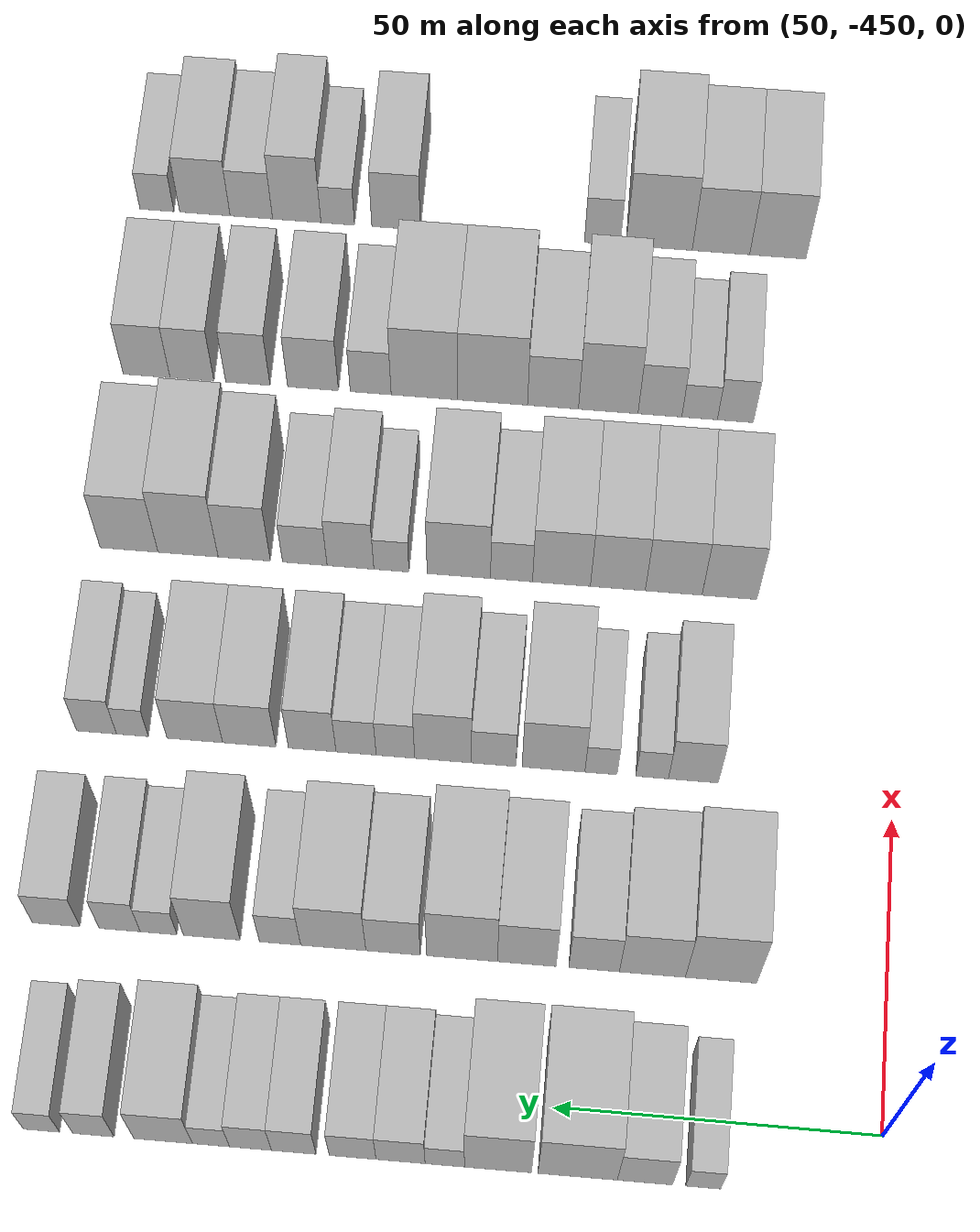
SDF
<sdf version="1.6">
 <world name="default">
  <model name="building_14">
   <static>1</static>
   <pose>50.0000 -423.2773 0 0.000000 0.000000 0.000000</pose>
   <link name="link">
    <pose>0 0 6.00 0 0 0</pose>
    <collision name="collision"><geometry><box><size>20.0000 5.2544 12.0000</size></box></geometry></collision>
    <visual name="visual">
     <cast_shadows>0</cast_shadows>
     <geometry><box><size>20.0000 5.2544 12.0000</size></box></geometry>
     <material>
      <script>
       <uri>model://HANNAS_wall/materials/scripts</uri>
       <uri>model://HANNAS_wall/materials/textures</uri>
       <name>vrc/HANNAS_wall</name>
      </script>
     </material>
    </visual>
   </link>
  </model>
  <model name="building_15">
   <static>1</static>
   <pose>50.0000 -414.4967 0 0.000000 0.000000 0.000000</pose>
   <link name="link">
    <pose>0 0 9.00 0 0 0</pose>
    <collision name="collision"><geometry><box><size>20.0000 8.3069 18.0000</size></box></geometry></collision>
    <visual name="visual">
     <cast_shadows>0</cast_shadows>
     <geometry><box><size>20.0000 8.3069 18.0000</size></box></geometry>
     <material>
      <script>
       <uri>model://HANNAS_wall/materials/scripts</uri>
       <uri>model://HANNAS_wall/materials/textures</uri>
       <name>vrc/HANNAS_wall</name>
      </script>
     </material>
    </visual>
   </link>
  </model>
  <model name="building_16">
   <static>1</static>
   <pose>50.0000 -404.3674 0 0.000000 0.000000 0.000000</pose>
   <link name="link">
    <pose>0 0 12.00 0 0 0</pose>
    <collision name="collision"><geometry><box><size>20.0000 11.9518 24.0000</size></box></geometry></collision>
    <visual name="visual">
     <cast_shadows>0</cast_shadows>
     <geometry><box><size>20.0000 11.9518 24.0000</size></box></geometry>
     <material>
      <script>
       <uri>model://HANNAS_wall/materials/scripts</uri>
       <uri>model://HANNAS_wall/materials/textures</uri>
       <name>vrc/HANNAS_wall</name>
      </script>
     </material>
    </visual>
   </link>
  </model>
  <model name="building_17">
   <static>1</static>
   <pose>50.0000 -392.3317 0 0.000000 0.000000 0.000000</pose>
   <link name="link">
    <pose>0 0 12.00 0 0 0</pose>
    <collision name="collision"><geometry><box><size>20.0000 10.1196 24.0000</size></box></geometry></collision>
    <visual name="visual">
     <cast_shadows>0</cast_shadows>
     <geometry><box><size>20.0000 10.1196 24.0000</size></box></geometry>
     <material>
      <script>
       <uri>model://HANNAS_wall/materials/scripts</uri>
       <uri>model://HANNAS_wall/materials/textures</uri>
       <name>vrc/HANNAS_wall</name>
      </script>
     </material>
    </visual>
   </link>
  </model>
  <model name="building_18">
   <static>1</static>
   <pose>50.0000 -384.3064 0 0.000000 0.000000 0.000000</pose>
   <link name="link">
    <pose>0 0 6.00 0 0 0</pose>
    <collision name="collision"><geometry><box><size>20.0000 5.9310 12.0000</size></box></geometry></collision>
    <visual name="visual">
     <cast_shadows>0</cast_shadows>
     <geometry><box><size>20.0000 5.9310 12.0000</size></box></geometry>
     <material>
      <script>
       <uri>model://HANNAS_wall/materials/scripts</uri>
       <uri>model://HANNAS_wall/materials/textures</uri>
       <name>vrc/HANNAS_wall</name>
      </script>
     </material>
    </visual>
   </link>
  </model>
  <model name="building_19">
   <static>1</static>
   <pose>50.0000 -377.6340 0 0.000000 0.000000 0.000000</pose>
   <link name="link">
    <pose>0 0 7.50 0 0 0</pose>
    <collision name="collision"><geometry><box><size>20.0000 7.4138 15.0000</size></box></geometry></collision>
    <visual name="visual">
     <cast_shadows>0</cast_shadows>
     <geometry><box><size>20.0000 7.4138 15.0000</size></box></geometry>
     <material>
      <script>
       <uri>model://HANNAS_wall/materials/scripts</uri>
       <uri>model://HANNAS_wall/materials/textures</uri>
       <name>vrc/HANNAS_wall</name>
      </script>
     </material>
    </visual>
   </link>
  </model>
  <model name="building_20">
   <static>1</static>
   <pose>50.0000 -370.3823 0 0.000000 0.000000 0.000000</pose>
   <link name="link">
    <pose>0 0 7.50 0 0 0</pose>
    <collision name="collision"><geometry><box><size>20.0000 7.0895 15.0000</size></box></geometry></collision>
    <visual name="visual">
     <cast_shadows>0</cast_shadows>
     <geometry><box><size>20.0000 7.0895 15.0000</size></box></geometry>
     <material>
      <script>
       <uri>model://HANNAS_wall/materials/scripts</uri>
       <uri>model://HANNAS_wall/materials/textures</uri>
       <name>vrc/HANNAS_wall</name>
      </script>
     </material>
    </visual>
   </link>
  </model>
  <model name="building_21">
   <static>1</static>
   <pose>50.0000 -361.4467 0 0.000000 0.000000 0.000000</pose>
   <link name="link">
    <pose>0 0 7.50 0 0 0</pose>
    <collision name="collision"><geometry><box><size>20.0000 6.7816 15.0000</size></box></geometry></collision>
    <visual name="visual">
     <cast_shadows>0</cast_shadows>
     <geometry><box><size>20.0000 6.7816 15.0000</size></box></geometry>
     <material>
      <script>
       <uri>model://HANNAS_wall/materials/scripts</uri>
       <uri>model://HANNAS_wall/materials/textures</uri>
       <name>vrc/HANNAS_wall</name>
      </script>
     </material>
    </visual>
   </link>
  </model>
  <model name="building_22">
   <static>1</static>
   <pose>50.0000 -354.8756 0 0.000000 0.000000 0.000000</pose>
   <link name="link">
    <pose>0 0 7.50 0 0 0</pose>
    <collision name="collision"><geometry><box><size>20.0000 6.3606 15.0000</size></box></geometry></collision>
    <visual name="visual">
     <cast_shadows>0</cast_shadows>
     <geometry><box><size>20.0000 6.3606 15.0000</size></box></geometry>
     <material>
      <script>
       <uri>model://HANNAS_wall/materials/scripts</uri>
       <uri>model://HANNAS_wall/materials/textures</uri>
       <name>vrc/HANNAS_wall</name>
      </script>
     </material>
    </visual>
   </link>
  </model>
  <model name="building_23">
   <static>1</static>
   <pose>50.0000 -348.8726 0 0.000000 0.000000 0.000000</pose>
   <link name="link">
    <pose>0 0 6.00 0 0 0</pose>
    <collision name="collision"><geometry><box><size>20.0000 5.6454 12.0000</size></box></geometry></collision>
    <visual name="visual">
     <cast_shadows>0</cast_shadows>
     <geometry><box><size>20.0000 5.6454 12.0000</size></box></geometry>
     <material>
      <script>
       <uri>model://HANNAS_wall/materials/scripts</uri>
       <uri>model://HANNAS_wall/materials/textures</uri>
       <name>vrc/HANNAS_wall</name>
      </script>
     </material>
    </visual>
   </link>
  </model>
  <model name="building_24">
   <static>1</static>
   <pose>50.0000 -341.5945 0 0.000000 0.000000 0.000000</pose>
   <link name="link">
    <pose>0 0 9.00 0 0 0</pose>
    <collision name="collision"><geometry><box><size>20.0000 8.9108 18.0000</size></box></geometry></collision>
    <visual name="visual">
     <cast_shadows>0</cast_shadows>
     <geometry><box><size>20.0000 8.9108 18.0000</size></box></geometry>
     <material>
      <script>
       <uri>model://HANNAS_wall/materials/scripts</uri>
       <uri>model://HANNAS_wall/materials/textures</uri>
       <name>vrc/HANNAS_wall</name>
      </script>
     </material>
    </visual>
   </link>
  </model>
  <model name="building_25">
   <static>1</static>
   <pose>50.0000 -330.9792 0 0.000000 0.000000 0.000000</pose>
   <link name="link">
    <pose>0 0 7.50 0 0 0</pose>
    <collision name="collision"><geometry><box><size>20.0000 6.3199 15.0000</size></box></geometry></collision>
    <visual name="visual">
     <cast_shadows>0</cast_shadows>
     <geometry><box><size>20.0000 6.3199 15.0000</size></box></geometry>
     <material>
      <script>
       <uri>model://HANNAS_wall/materials/scripts</uri>
       <uri>model://HANNAS_wall/materials/textures</uri>
       <name>vrc/HANNAS_wall</name>
      </script>
     </material>
    </visual>
   </link>
  </model>
  <model name="building_26">
   <static>1</static>
   <pose>50.0000 -323.0660 0 0.000000 0.000000 0.000000</pose>
   <link name="link">
    <pose>0 0 6.00 0 0 0</pose>
    <collision name="collision"><geometry><box><size>20.0000 5.5065 12.0000</size></box></geometry></collision>
    <visual name="visual">
     <cast_shadows>0</cast_shadows>
     <geometry><box><size>20.0000 5.5065 12.0000</size></box></geometry>
     <material>
      <script>
       <uri>model://HANNAS_wall/materials/scripts</uri>
       <uri>model://HANNAS_wall/materials/textures</uri>
       <name>vrc/HANNAS_wall</name>
      </script>
     </material>
    </visual>
   </link>
  </model>
  <model name="building_141">
   <static>1</static>
   <pose>82.0000 -424.3336 0 0.000000 0.000000 0.000000</pose>
   <link name="link">
    <pose>0 0 12.00 0 0 0</pose>
    <collision name="collision"><geometry><box><size>20.0000 11.0124 24.0000</size></box></geometry></collision>
    <visual name="visual">
     <cast_shadows>0</cast_shadows>
     <geometry><box><size>20.0000 11.0124 24.0000</size></box></geometry>
     <material>
      <script>
       <uri>model://HANNAS_wall/materials/scripts</uri>
       <uri>model://HANNAS_wall/materials/textures</uri>
       <name>vrc/HANNAS_wall</name>
      </script>
     </material>
    </visual>
   </link>
  </model>
  <model name="building_142">
   <static>1</static>
   <pose>82.0000 -413.7071 0 0.000000 0.000000 0.000000</pose>
   <link name="link">
    <pose>0 0 10.50 0 0 0</pose>
    <collision name="collision"><geometry><box><size>20.0000 10.2407 21.0000</size></box></geometry></collision>
    <visual name="visual">
     <cast_shadows>0</cast_shadows>
     <geometry><box><size>20.0000 10.2407 21.0000</size></box></geometry>
     <material>
      <script>
       <uri>model://HANNAS_wall/materials/scripts</uri>
       <uri>model://HANNAS_wall/materials/textures</uri>
       <name>vrc/HANNAS_wall</name>
      </script>
     </material>
    </visual>
   </link>
  </model>
  <model name="building_143">
   <static>1</static>
   <pose>82.0000 -404.6716 0 0.000000 0.000000 0.000000</pose>
   <link name="link">
    <pose>0 0 9.00 0 0 0</pose>
    <collision name="collision"><geometry><box><size>20.0000 7.8303 18.0000</size></box></geometry></collision>
    <visual name="visual">
     <cast_shadows>0</cast_shadows>
     <geometry><box><size>20.0000 7.8303 18.0000</size></box></geometry>
     <material>
      <script>
       <uri>model://HANNAS_wall/materials/scripts</uri>
       <uri>model://HANNAS_wall/materials/textures</uri>
       <name>vrc/HANNAS_wall</name>
      </script>
     </material>
    </visual>
   </link>
  </model>
  <model name="building_144">
   <static>1</static>
   <pose>82.0000 -394.2082 0 0.000000 0.000000 0.000000</pose>
   <link name="link">
    <pose>0 0 10.50 0 0 0</pose>
    <collision name="collision"><geometry><box><size>20.0000 9.0965 21.0000</size></box></geometry></collision>
    <visual name="visual">
     <cast_shadows>0</cast_shadows>
     <geometry><box><size>20.0000 9.0965 21.0000</size></box></geometry>
     <material>
      <script>
       <uri>model://HANNAS_wall/materials/scripts</uri>
       <uri>model://HANNAS_wall/materials/textures</uri>
       <name>vrc/HANNAS_wall</name>
      </script>
     </material>
    </visual>
   </link>
  </model>
  <model name="building_145">
   <static>1</static>
   <pose>82.0000 -384.1647 0 0.000000 0.000000 0.000000</pose>
   <link name="link">
    <pose>0 0 12.00 0 0 0</pose>
    <collision name="collision"><geometry><box><size>20.0000 10.9904 24.0000</size></box></geometry></collision>
    <visual name="visual">
     <cast_shadows>0</cast_shadows>
     <geometry><box><size>20.0000 10.9904 24.0000</size></box></geometry>
     <material>
      <script>
       <uri>model://HANNAS_wall/materials/scripts</uri>
       <uri>model://HANNAS_wall/materials/textures</uri>
       <name>vrc/HANNAS_wall</name>
      </script>
     </material>
    </visual>
   </link>
  </model>
  <model name="building_146">
   <static>1</static>
   <pose>82.0000 -373.4255 0 0.000000 0.000000 0.000000</pose>
   <link name="link">
    <pose>0 0 9.00 0 0 0</pose>
    <collision name="collision"><geometry><box><size>20.0000 8.4880 18.0000</size></box></geometry></collision>
    <visual name="visual">
     <cast_shadows>0</cast_shadows>
     <geometry><box><size>20.0000 8.4880 18.0000</size></box></geometry>
     <material>
      <script>
       <uri>model://HANNAS_wall/materials/scripts</uri>
       <uri>model://HANNAS_wall/materials/textures</uri>
       <name>vrc/HANNAS_wall</name>
      </script>
     </material>
    </visual>
   </link>
  </model>
  <model name="building_147">
   <static>1</static>
   <pose>82.0000 -364.0912 0 0.000000 0.000000 0.000000</pose>
   <link name="link">
    <pose>0 0 10.50 0 0 0</pose>
    <collision name="collision"><geometry><box><size>20.0000 10.1805 21.0000</size></box></geometry></collision>
    <visual name="visual">
     <cast_shadows>0</cast_shadows>
     <geometry><box><size>20.0000 10.1805 21.0000</size></box></geometry>
     <material>
      <script>
       <uri>model://HANNAS_wall/materials/scripts</uri>
       <uri>model://HANNAS_wall/materials/textures</uri>
       <name>vrc/HANNAS_wall</name>
      </script>
     </material>
    </visual>
   </link>
  </model>
  <model name="building_148">
   <static>1</static>
   <pose>82.0000 -355.7858 0 0.000000 0.000000 0.000000</pose>
   <link name="link">
    <pose>0 0 7.50 0 0 0</pose>
    <collision name="collision"><geometry><box><size>20.0000 6.4305 15.0000</size></box></geometry></collision>
    <visual name="visual">
     <cast_shadows>0</cast_shadows>
     <geometry><box><size>20.0000 6.4305 15.0000</size></box></geometry>
     <material>
      <script>
       <uri>model://HANNAS_wall/materials/scripts</uri>
       <uri>model://HANNAS_wall/materials/textures</uri>
       <name>vrc/HANNAS_wall</name>
      </script>
     </material>
    </visual>
   </link>
  </model>
  <model name="building_149">
   <static>1</static>
   <pose>82.0000 -345.1170 0 0.000000 0.000000 0.000000</pose>
   <link name="link">
    <pose>0 0 10.50 0 0 0</pose>
    <collision name="collision"><geometry><box><size>20.0000 8.9071 21.0000</size></box></geometry></collision>
    <visual name="visual">
     <cast_shadows>0</cast_shadows>
     <geometry><box><size>20.0000 8.9071 21.0000</size></box></geometry>
     <material>
      <script>
       <uri>model://HANNAS_wall/materials/scripts</uri>
       <uri>model://HANNAS_wall/materials/textures</uri>
       <name>vrc/HANNAS_wall</name>
      </script>
     </material>
    </visual>
   </link>
  </model>
  <model name="building_150">
   <static>1</static>
   <pose>82.0000 -336.7824 0 0.000000 0.000000 0.000000</pose>
   <link name="link">
    <pose>0 0 6.00 0 0 0</pose>
    <collision name="collision"><geometry><box><size>20.0000 5.7620 12.0000</size></box></geometry></collision>
    <visual name="visual">
     <cast_shadows>0</cast_shadows>
     <geometry><box><size>20.0000 5.7620 12.0000</size></box></geometry>
     <material>
      <script>
       <uri>model://HANNAS_wall/materials/scripts</uri>
       <uri>model://HANNAS_wall/materials/textures</uri>
       <name>vrc/HANNAS_wall</name>
      </script>
     </material>
    </visual>
   </link>
  </model>
  <model name="building_151">
   <static>1</static>
   <pose>82.0000 -330.6699 0 0.000000 0.000000 0.000000</pose>
   <link name="link">
    <pose>0 0 7.50 0 0 0</pose>
    <collision name="collision"><geometry><box><size>20.0000 6.4630 15.0000</size></box></geometry></collision>
    <visual name="visual">
     <cast_shadows>0</cast_shadows>
     <geometry><box><size>20.0000 6.4630 15.0000</size></box></geometry>
     <material>
      <script>
       <uri>model://HANNAS_wall/materials/scripts</uri>
       <uri>model://HANNAS_wall/materials/textures</uri>
       <name>vrc/HANNAS_wall</name>
      </script>
     </material>
    </visual>
   </link>
  </model>
  <model name="building_152">
   <static>1</static>
   <pose>82.0000 -320.7063 0 0.000000 0.000000 0.000000</pose>
   <link name="link">
    <pose>0 0 7.50 0 0 0</pose>
    <collision name="collision"><geometry><box><size>20.0000 7.4641 15.0000</size></box></geometry></collision>
    <visual name="visual">
     <cast_shadows>0</cast_shadows>
     <geometry><box><size>20.0000 7.4641 15.0000</size></box></geometry>
     <material>
      <script>
       <uri>model://HANNAS_wall/materials/scripts</uri>
       <uri>model://HANNAS_wall/materials/textures</uri>
       <name>vrc/HANNAS_wall</name>
      </script>
     </material>
    </visual>
   </link>
  </model>
  <model name="building_260">
   <static>1</static>
   <pose>114.0000 -418.3069 0 0.000000 0.000000 0.000000</pose>
   <link name="link">
    <pose>0 0 9.00 0 0 0</pose>
    <collision name="collision"><geometry><box><size>20.0000 7.9290 18.0000</size></box></geometry></collision>
    <visual name="visual">
     <cast_shadows>0</cast_shadows>
     <geometry><box><size>20.0000 7.9290 18.0000</size></box></geometry>
     <material>
      <script>
       <uri>model://HANNAS_wall/materials/scripts</uri>
       <uri>model://HANNAS_wall/materials/textures</uri>
       <name>vrc/HANNAS_wall</name>
      </script>
     </material>
    </visual>
   </link>
  </model>
  <model name="building_261">
   <static>1</static>
   <pose>114.0000 -411.7435 0 0.000000 0.000000 0.000000</pose>
   <link name="link">
    <pose>0 0 6.00 0 0 0</pose>
    <collision name="collision"><geometry><box><size>20.0000 5.1978 12.0000</size></box></geometry></collision>
    <visual name="visual">
     <cast_shadows>0</cast_shadows>
     <geometry><box><size>20.0000 5.1978 12.0000</size></box></geometry>
     <material>
      <script>
       <uri>model://HANNAS_wall/materials/scripts</uri>
       <uri>model://HANNAS_wall/materials/textures</uri>
       <name>vrc/HANNAS_wall</name>
      </script>
     </material>
    </visual>
   </link>
  </model>
  <model name="building_262">
   <static>1</static>
   <pose>114.0000 -403.5825 0 0.000000 0.000000 0.000000</pose>
   <link name="link">
    <pose>0 0 6.00 0 0 0</pose>
    <collision name="collision"><geometry><box><size>20.0000 5.1242 12.0000</size></box></geometry></collision>
    <visual name="visual">
     <cast_shadows>0</cast_shadows>
     <geometry><box><size>20.0000 5.1242 12.0000</size></box></geometry>
     <material>
      <script>
       <uri>model://HANNAS_wall/materials/scripts</uri>
       <uri>model://HANNAS_wall/materials/textures</uri>
       <name>vrc/HANNAS_wall</name>
      </script>
     </material>
    </visual>
   </link>
  </model>
  <model name="building_263">
   <static>1</static>
   <pose>114.0000 -396.0095 0 0.000000 0.000000 0.000000</pose>
   <link name="link">
    <pose>0 0 10.50 0 0 0</pose>
    <collision name="collision"><geometry><box><size>20.0000 10.0218 21.0000</size></box></geometry></collision>
    <visual name="visual">
     <cast_shadows>0</cast_shadows>
     <geometry><box><size>20.0000 10.0218 21.0000</size></box></geometry>
     <material>
      <script>
       <uri>model://HANNAS_wall/materials/scripts</uri>
       <uri>model://HANNAS_wall/materials/textures</uri>
       <name>vrc/HANNAS_wall</name>
      </script>
     </material>
    </visual>
   </link>
  </model>
  <model name="building_264">
   <static>1</static>
   <pose>114.0000 -386.4516 0 0.000000 0.000000 0.000000</pose>
   <link name="link">
    <pose>0 0 7.50 0 0 0</pose>
    <collision name="collision"><geometry><box><size>20.0000 7.0940 15.0000</size></box></geometry></collision>
    <visual name="visual">
     <cast_shadows>0</cast_shadows>
     <geometry><box><size>20.0000 7.0940 15.0000</size></box></geometry>
     <material>
      <script>
       <uri>model://HANNAS_wall/materials/scripts</uri>
       <uri>model://HANNAS_wall/materials/textures</uri>
       <name>vrc/HANNAS_wall</name>
      </script>
     </material>
    </visual>
   </link>
  </model>
  <model name="building_265">
   <static>1</static>
   <pose>114.0000 -378.3552 0 0.000000 0.000000 0.000000</pose>
   <link name="link">
    <pose>0 0 10.50 0 0 0</pose>
    <collision name="collision"><geometry><box><size>20.0000 9.0988 21.0000</size></box></geometry></collision>
    <visual name="visual">
     <cast_shadows>0</cast_shadows>
     <geometry><box><size>20.0000 9.0988 21.0000</size></box></geometry>
     <material>
      <script>
       <uri>model://HANNAS_wall/materials/scripts</uri>
       <uri>model://HANNAS_wall/materials/textures</uri>
       <name>vrc/HANNAS_wall</name>
      </script>
     </material>
    </visual>
   </link>
  </model>
  <model name="building_266">
   <static>1</static>
   <pose>114.0000 -370.7224 0 0.000000 0.000000 0.000000</pose>
   <link name="link">
    <pose>0 0 7.50 0 0 0</pose>
    <collision name="collision"><geometry><box><size>20.0000 6.1670 15.0000</size></box></geometry></collision>
    <visual name="visual">
     <cast_shadows>0</cast_shadows>
     <geometry><box><size>20.0000 6.1670 15.0000</size></box></geometry>
     <material>
      <script>
       <uri>model://HANNAS_wall/materials/scripts</uri>
       <uri>model://HANNAS_wall/materials/textures</uri>
       <name>vrc/HANNAS_wall</name>
      </script>
     </material>
    </visual>
   </link>
  </model>
  <model name="building_267">
   <static>1</static>
   <pose>114.0000 -364.4192 0 0.000000 0.000000 0.000000</pose>
   <link name="link">
    <pose>0 0 7.50 0 0 0</pose>
    <collision name="collision"><geometry><box><size>20.0000 6.4394 15.0000</size></box></geometry></collision>
    <visual name="visual">
     <cast_shadows>0</cast_shadows>
     <geometry><box><size>20.0000 6.4394 15.0000</size></box></geometry>
     <material>
      <script>
       <uri>model://HANNAS_wall/materials/scripts</uri>
       <uri>model://HANNAS_wall/materials/textures</uri>
       <name>vrc/HANNAS_wall</name>
      </script>
     </material>
    </visual>
   </link>
  </model>
  <model name="building_268">
   <static>1</static>
   <pose>114.0000 -357.3768 0 0.000000 0.000000 0.000000</pose>
   <link name="link">
    <pose>0 0 9.00 0 0 0</pose>
    <collision name="collision"><geometry><box><size>20.0000 7.6453 18.0000</size></box></geometry></collision>
    <visual name="visual">
     <cast_shadows>0</cast_shadows>
     <geometry><box><size>20.0000 7.6453 18.0000</size></box></geometry>
     <material>
      <script>
       <uri>model://HANNAS_wall/materials/scripts</uri>
       <uri>model://HANNAS_wall/materials/textures</uri>
       <name>vrc/HANNAS_wall</name>
      </script>
     </material>
    </visual>
   </link>
  </model>
  <model name="building_269">
   <static>1</static>
   <pose>114.0000 -347.2664 0 0.000000 0.000000 0.000000</pose>
   <link name="link">
    <pose>0 0 9.00 0 0 0</pose>
    <collision name="collision"><geometry><box><size>20.0000 8.5756 18.0000</size></box></geometry></collision>
    <visual name="visual">
     <cast_shadows>0</cast_shadows>
     <geometry><box><size>20.0000 8.5756 18.0000</size></box></geometry>
     <material>
      <script>
       <uri>model://HANNAS_wall/materials/scripts</uri>
       <uri>model://HANNAS_wall/materials/textures</uri>
       <name>vrc/HANNAS_wall</name>
      </script>
     </material>
    </visual>
   </link>
  </model>
  <model name="building_270">
   <static>1</static>
   <pose>114.0000 -338.4907 0 0.000000 0.000000 0.000000</pose>
   <link name="link">
    <pose>0 0 9.00 0 0 0</pose>
    <collision name="collision"><geometry><box><size>20.0000 8.9759 18.0000</size></box></geometry></collision>
    <visual name="visual">
     <cast_shadows>0</cast_shadows>
     <geometry><box><size>20.0000 8.9759 18.0000</size></box></geometry>
     <material>
      <script>
       <uri>model://HANNAS_wall/materials/scripts</uri>
       <uri>model://HANNAS_wall/materials/textures</uri>
       <name>vrc/HANNAS_wall</name>
      </script>
     </material>
    </visual>
   </link>
  </model>
  <model name="building_271">
   <static>1</static>
   <pose>114.0000 -328.4315 0 0.000000 0.000000 0.000000</pose>
   <link name="link">
    <pose>0 0 6.00 0 0 0</pose>
    <collision name="collision"><geometry><box><size>20.0000 5.1425 12.0000</size></box></geometry></collision>
    <visual name="visual">
     <cast_shadows>0</cast_shadows>
     <geometry><box><size>20.0000 5.1425 12.0000</size></box></geometry>
     <material>
      <script>
       <uri>model://HANNAS_wall/materials/scripts</uri>
       <uri>model://HANNAS_wall/materials/textures</uri>
       <name>vrc/HANNAS_wall</name>
      </script>
     </material>
    </visual>
   </link>
  </model>
  <model name="building_272">
   <static>1</static>
   <pose>114.0000 -322.6305 0 0.000000 0.000000 0.000000</pose>
   <link name="link">
    <pose>0 0 7.50 0 0 0</pose>
    <collision name="collision"><geometry><box><size>20.0000 6.4595 15.0000</size></box></geometry></collision>
    <visual name="visual">
     <cast_shadows>0</cast_shadows>
     <geometry><box><size>20.0000 6.4595 15.0000</size></box></geometry>
     <material>
      <script>
       <uri>model://HANNAS_wall/materials/scripts</uri>
       <uri>model://HANNAS_wall/materials/textures</uri>
       <name>vrc/HANNAS_wall</name>
      </script>
     </material>
    </visual>
   </link>
  </model>
  <model name="building_384">
   <static>1</static>
   <pose>146.0000 -422.4811 0 0.000000 0.000000 0.000000</pose>
   <link name="link">
    <pose>0 0 10.50 0 0 0</pose>
    <collision name="collision"><geometry><box><size>20.0000 8.9556 21.0000</size></box></geometry></collision>
    <visual name="visual">
     <cast_shadows>0</cast_shadows>
     <geometry><box><size>20.0000 8.9556 21.0000</size></box></geometry>
     <material>
      <script>
       <uri>model://HANNAS_wall/materials/scripts</uri>
       <uri>model://HANNAS_wall/materials/textures</uri>
       <name>vrc/HANNAS_wall</name>
      </script>
     </material>
    </visual>
   </link>
  </model>
  <model name="building_385">
   <static>1</static>
   <pose>146.0000 -413.3529 0 0.000000 0.000000 0.000000</pose>
   <link name="link">
    <pose>0 0 10.50 0 0 0</pose>
    <collision name="collision"><geometry><box><size>20.0000 9.3007 21.0000</size></box></geometry></collision>
    <visual name="visual">
     <cast_shadows>0</cast_shadows>
     <geometry><box><size>20.0000 9.3007 21.0000</size></box></geometry>
     <material>
      <script>
       <uri>model://HANNAS_wall/materials/scripts</uri>
       <uri>model://HANNAS_wall/materials/textures</uri>
       <name>vrc/HANNAS_wall</name>
      </script>
     </material>
    </visual>
   </link>
  </model>
  <model name="building_386">
   <static>1</static>
   <pose>146.0000 -404.1996 0 0.000000 0.000000 0.000000</pose>
   <link name="link">
    <pose>0 0 10.50 0 0 0</pose>
    <collision name="collision"><geometry><box><size>20.0000 9.0059 21.0000</size></box></geometry></collision>
    <visual name="visual">
     <cast_shadows>0</cast_shadows>
     <geometry><box><size>20.0000 9.0059 21.0000</size></box></geometry>
     <material>
      <script>
       <uri>model://HANNAS_wall/materials/scripts</uri>
       <uri>model://HANNAS_wall/materials/textures</uri>
       <name>vrc/HANNAS_wall</name>
      </script>
     </material>
    </visual>
   </link>
  </model>
  <model name="building_387">
   <static>1</static>
   <pose>146.0000 -394.9527 0 0.000000 0.000000 0.000000</pose>
   <link name="link">
    <pose>0 0 10.50 0 0 0</pose>
    <collision name="collision"><geometry><box><size>20.0000 9.4879 21.0000</size></box></geometry></collision>
    <visual name="visual">
     <cast_shadows>0</cast_shadows>
     <geometry><box><size>20.0000 9.4879 21.0000</size></box></geometry>
     <material>
      <script>
       <uri>model://HANNAS_wall/materials/scripts</uri>
       <uri>model://HANNAS_wall/materials/textures</uri>
       <name>vrc/HANNAS_wall</name>
      </script>
     </material>
    </visual>
   </link>
  </model>
  <model name="building_388">
   <static>1</static>
   <pose>146.0000 -386.7587 0 0.000000 0.000000 0.000000</pose>
   <link name="link">
    <pose>0 0 7.50 0 0 0</pose>
    <collision name="collision"><geometry><box><size>20.0000 6.9002 15.0000</size></box></geometry></collision>
    <visual name="visual">
     <cast_shadows>0</cast_shadows>
     <geometry><box><size>20.0000 6.9002 15.0000</size></box></geometry>
     <material>
      <script>
       <uri>model://HANNAS_wall/materials/scripts</uri>
       <uri>model://HANNAS_wall/materials/textures</uri>
       <name>vrc/HANNAS_wall</name>
      </script>
     </material>
    </visual>
   </link>
  </model>
  <model name="building_389">
   <static>1</static>
   <pose>146.0000 -378.0991 0 0.000000 0.000000 0.000000</pose>
   <link name="link">
    <pose>0 0 10.50 0 0 0</pose>
    <collision name="collision"><geometry><box><size>20.0000 10.4190 21.0000</size></box></geometry></collision>
    <visual name="visual">
     <cast_shadows>0</cast_shadows>
     <geometry><box><size>20.0000 10.4190 21.0000</size></box></geometry>
     <material>
      <script>
       <uri>model://HANNAS_wall/materials/scripts</uri>
       <uri>model://HANNAS_wall/materials/textures</uri>
       <name>vrc/HANNAS_wall</name>
      </script>
     </material>
    </visual>
   </link>
  </model>
  <model name="building_390">
   <static>1</static>
   <pose>146.0000 -366.9949 0 0.000000 0.000000 0.000000</pose>
   <link name="link">
    <pose>0 0 6.00 0 0 0</pose>
    <collision name="collision"><geometry><box><size>20.0000 5.7893 12.0000</size></box></geometry></collision>
    <visual name="visual">
     <cast_shadows>0</cast_shadows>
     <geometry><box><size>20.0000 5.7893 12.0000</size></box></geometry>
     <material>
      <script>
       <uri>model://HANNAS_wall/materials/scripts</uri>
       <uri>model://HANNAS_wall/materials/textures</uri>
       <name>vrc/HANNAS_wall</name>
      </script>
     </material>
    </visual>
   </link>
  </model>
  <model name="building_391">
   <static>1</static>
   <pose>146.0000 -360.2416 0 0.000000 0.000000 0.000000</pose>
   <link name="link">
    <pose>0 0 9.00 0 0 0</pose>
    <collision name="collision"><geometry><box><size>20.0000 7.7173 18.0000</size></box></geometry></collision>
    <visual name="visual">
     <cast_shadows>0</cast_shadows>
     <geometry><box><size>20.0000 7.7173 18.0000</size></box></geometry>
     <material>
      <script>
       <uri>model://HANNAS_wall/materials/scripts</uri>
       <uri>model://HANNAS_wall/materials/textures</uri>
       <name>vrc/HANNAS_wall</name>
      </script>
     </material>
    </visual>
   </link>
  </model>
  <model name="building_392">
   <static>1</static>
   <pose>146.0000 -352.7069 0 0.000000 0.000000 0.000000</pose>
   <link name="link">
    <pose>0 0 7.50 0 0 0</pose>
    <collision name="collision"><geometry><box><size>20.0000 7.3521 15.0000</size></box></geometry></collision>
    <visual name="visual">
     <cast_shadows>0</cast_shadows>
     <geometry><box><size>20.0000 7.3521 15.0000</size></box></geometry>
     <material>
      <script>
       <uri>model://HANNAS_wall/materials/scripts</uri>
       <uri>model://HANNAS_wall/materials/textures</uri>
       <name>vrc/HANNAS_wall</name>
      </script>
     </material>
    </visual>
   </link>
  </model>
  <model name="building_393">
   <static>1</static>
   <pose>146.0000 -342.7053 0 0.000000 0.000000 0.000000</pose>
   <link name="link">
    <pose>0 0 10.50 0 0 0</pose>
    <collision name="collision"><geometry><box><size>20.0000 8.6512 21.0000</size></box></geometry></collision>
    <visual name="visual">
     <cast_shadows>0</cast_shadows>
     <geometry><box><size>20.0000 8.6512 21.0000</size></box></geometry>
     <material>
      <script>
       <uri>model://HANNAS_wall/materials/scripts</uri>
       <uri>model://HANNAS_wall/materials/textures</uri>
       <name>vrc/HANNAS_wall</name>
      </script>
     </material>
    </visual>
   </link>
  </model>
  <model name="building_394">
   <static>1</static>
   <pose>146.0000 -333.4046 0 0.000000 0.000000 0.000000</pose>
   <link name="link">
    <pose>0 0 12.00 0 0 0</pose>
    <collision name="collision"><geometry><box><size>20.0000 9.9501 24.0000</size></box></geometry></collision>
    <visual name="visual">
     <cast_shadows>0</cast_shadows>
     <geometry><box><size>20.0000 9.9501 24.0000</size></box></geometry>
     <material>
      <script>
       <uri>model://HANNAS_wall/materials/scripts</uri>
       <uri>model://HANNAS_wall/materials/textures</uri>
       <name>vrc/HANNAS_wall</name>
      </script>
     </material>
    </visual>
   </link>
  </model>
  <model name="building_395">
   <static>1</static>
   <pose>146.0000 -323.6271 0 0.000000 0.000000 0.000000</pose>
   <link name="link">
    <pose>0 0 10.50 0 0 0</pose>
    <collision name="collision"><geometry><box><size>20.0000 9.6050 21.0000</size></box></geometry></collision>
    <visual name="visual">
     <cast_shadows>0</cast_shadows>
     <geometry><box><size>20.0000 9.6050 21.0000</size></box></geometry>
     <material>
      <script>
       <uri>model://HANNAS_wall/materials/scripts</uri>
       <uri>model://HANNAS_wall/materials/textures</uri>
       <name>vrc/HANNAS_wall</name>
      </script>
     </material>
    </visual>
   </link>
  </model>
  <model name="building_506">
   <static>1</static>
   <pose>178.0000 -421.8914 0 0.000000 0.000000 0.000000</pose>
   <link name="link">
    <pose>0 0 7.50 0 0 0</pose>
    <collision name="collision"><geometry><box><size>20.0000 6.0327 15.0000</size></box></geometry></collision>
    <visual name="visual">
     <cast_shadows>0</cast_shadows>
     <geometry><box><size>20.0000 6.0327 15.0000</size></box></geometry>
     <material>
      <script>
       <uri>model://HANNAS_wall/materials/scripts</uri>
       <uri>model://HANNAS_wall/materials/textures</uri>
       <name>vrc/HANNAS_wall</name>
      </script>
     </material>
    </visual>
   </link>
  </model>
  <model name="building_507">
   <static>1</static>
   <pose>178.0000 -415.8808 0 0.000000 0.000000 0.000000</pose>
   <link name="link">
    <pose>0 0 6.00 0 0 0</pose>
    <collision name="collision"><geometry><box><size>20.0000 5.9885 12.0000</size></box></geometry></collision>
    <visual name="visual">
     <cast_shadows>0</cast_shadows>
     <geometry><box><size>20.0000 5.9885 12.0000</size></box></geometry>
     <material>
      <script>
       <uri>model://HANNAS_wall/materials/scripts</uri>
       <uri>model://HANNAS_wall/materials/textures</uri>
       <name>vrc/HANNAS_wall</name>
      </script>
     </material>
    </visual>
   </link>
  </model>
  <model name="building_508">
   <static>1</static>
   <pose>178.0000 -409.2050 0 0.000000 0.000000 0.000000</pose>
   <link name="link">
    <pose>0 0 9.00 0 0 0</pose>
    <collision name="collision"><geometry><box><size>20.0000 7.3630 18.0000</size></box></geometry></collision>
    <visual name="visual">
     <cast_shadows>0</cast_shadows>
     <geometry><box><size>20.0000 7.3630 18.0000</size></box></geometry>
     <material>
      <script>
       <uri>model://HANNAS_wall/materials/scripts</uri>
       <uri>model://HANNAS_wall/materials/textures</uri>
       <name>vrc/HANNAS_wall</name>
      </script>
     </material>
    </visual>
   </link>
  </model>
  <model name="building_509">
   <static>1</static>
   <pose>178.0000 -400.5110 0 0.000000 0.000000 0.000000</pose>
   <link name="link">
    <pose>0 0 12.00 0 0 0</pose>
    <collision name="collision"><geometry><box><size>20.0000 10.0250 24.0000</size></box></geometry></collision>
    <visual name="visual">
     <cast_shadows>0</cast_shadows>
     <geometry><box><size>20.0000 10.0250 24.0000</size></box></geometry>
     <material>
      <script>
       <uri>model://HANNAS_wall/materials/scripts</uri>
       <uri>model://HANNAS_wall/materials/textures</uri>
       <name>vrc/HANNAS_wall</name>
      </script>
     </material>
    </visual>
   </link>
  </model>
  <model name="building_510">
   <static>1</static>
   <pose>178.0000 -391.2011 0 0.000000 0.000000 0.000000</pose>
   <link name="link">
    <pose>0 0 9.00 0 0 0</pose>
    <collision name="collision"><geometry><box><size>20.0000 8.5949 18.0000</size></box></geometry></collision>
    <visual name="visual">
     <cast_shadows>0</cast_shadows>
     <geometry><box><size>20.0000 8.5949 18.0000</size></box></geometry>
     <material>
      <script>
       <uri>model://HANNAS_wall/materials/scripts</uri>
       <uri>model://HANNAS_wall/materials/textures</uri>
       <name>vrc/HANNAS_wall</name>
      </script>
     </material>
    </visual>
   </link>
  </model>
  <model name="building_511">
   <static>1</static>
   <pose>178.0000 -381.0225 0 0.000000 0.000000 0.000000</pose>
   <link name="link">
    <pose>0 0 12.00 0 0 0</pose>
    <collision name="collision"><geometry><box><size>20.0000 11.7622 24.0000</size></box></geometry></collision>
    <visual name="visual">
     <cast_shadows>0</cast_shadows>
     <geometry><box><size>20.0000 11.7622 24.0000</size></box></geometry>
     <material>
      <script>
       <uri>model://HANNAS_wall/materials/scripts</uri>
       <uri>model://HANNAS_wall/materials/textures</uri>
       <name>vrc/HANNAS_wall</name>
      </script>
     </material>
    </visual>
   </link>
  </model>
  <model name="building_512">
   <static>1</static>
   <pose>178.0000 -369.5065 0 0.000000 0.000000 0.000000</pose>
   <link name="link">
    <pose>0 0 12.00 0 0 0</pose>
    <collision name="collision"><geometry><box><size>20.0000 11.2700 24.0000</size></box></geometry></collision>
    <visual name="visual">
     <cast_shadows>0</cast_shadows>
     <geometry><box><size>20.0000 11.2700 24.0000</size></box></geometry>
     <material>
      <script>
       <uri>model://HANNAS_wall/materials/scripts</uri>
       <uri>model://HANNAS_wall/materials/textures</uri>
       <name>vrc/HANNAS_wall</name>
      </script>
     </material>
    </visual>
   </link>
  </model>
  <model name="building_513">
   <static>1</static>
   <pose>178.0000 -360.4090 0 0.000000 0.000000 0.000000</pose>
   <link name="link">
    <pose>0 0 7.50 0 0 0</pose>
    <collision name="collision"><geometry><box><size>20.0000 6.9248 15.0000</size></box></geometry></collision>
    <visual name="visual">
     <cast_shadows>0</cast_shadows>
     <geometry><box><size>20.0000 6.9248 15.0000</size></box></geometry>
     <material>
      <script>
       <uri>model://HANNAS_wall/materials/scripts</uri>
       <uri>model://HANNAS_wall/materials/textures</uri>
       <name>vrc/HANNAS_wall</name>
      </script>
     </material>
    </visual>
   </link>
  </model>
  <model name="building_514">
   <static>1</static>
   <pose>178.0000 -350.6378 0 0.000000 0.000000 0.000000</pose>
   <link name="link">
    <pose>0 0 9.00 0 0 0</pose>
    <collision name="collision"><geometry><box><size>20.0000 8.6175 18.0000</size></box></geometry></collision>
    <visual name="visual">
     <cast_shadows>0</cast_shadows>
     <geometry><box><size>20.0000 8.6175 18.0000</size></box></geometry>
     <material>
      <script>
       <uri>model://HANNAS_wall/materials/scripts</uri>
       <uri>model://HANNAS_wall/materials/textures</uri>
       <name>vrc/HANNAS_wall</name>
      </script>
     </material>
    </visual>
   </link>
  </model>
  <model name="building_515">
   <static>1</static>
   <pose>178.0000 -339.5695 0 0.000000 0.000000 0.000000</pose>
   <link name="link">
    <pose>0 0 9.00 0 0 0</pose>
    <collision name="collision"><geometry><box><size>20.0000 7.5191 18.0000</size></box></geometry></collision>
    <visual name="visual">
     <cast_shadows>0</cast_shadows>
     <geometry><box><size>20.0000 7.5191 18.0000</size></box></geometry>
     <material>
      <script>
       <uri>model://HANNAS_wall/materials/scripts</uri>
       <uri>model://HANNAS_wall/materials/textures</uri>
       <name>vrc/HANNAS_wall</name>
      </script>
     </material>
    </visual>
   </link>
  </model>
  <model name="building_516">
   <static>1</static>
   <pose>178.0000 -330.0736 0 0.000000 0.000000 0.000000</pose>
   <link name="link">
    <pose>0 0 9.00 0 0 0</pose>
    <collision name="collision"><geometry><box><size>20.0000 7.4727 18.0000</size></box></geometry></collision>
    <visual name="visual">
     <cast_shadows>0</cast_shadows>
     <geometry><box><size>20.0000 7.4727 18.0000</size></box></geometry>
     <material>
      <script>
       <uri>model://HANNAS_wall/materials/scripts</uri>
       <uri>model://HANNAS_wall/materials/textures</uri>
       <name>vrc/HANNAS_wall</name>
      </script>
     </material>
    </visual>
   </link>
  </model>
  <model name="building_517">
   <static>1</static>
   <pose>178.0000 -322.3521 0 0.000000 0.000000 0.000000</pose>
   <link name="link">
    <pose>0 0 9.00 0 0 0</pose>
    <collision name="collision"><geometry><box><size>20.0000 7.9701 18.0000</size></box></geometry></collision>
    <visual name="visual">
     <cast_shadows>0</cast_shadows>
     <geometry><box><size>20.0000 7.9701 18.0000</size></box></geometry>
     <material>
      <script>
       <uri>model://HANNAS_wall/materials/scripts</uri>
       <uri>model://HANNAS_wall/materials/textures</uri>
       <name>vrc/HANNAS_wall</name>
      </script>
     </material>
    </visual>
   </link>
  </model>
  <model name="building_623">
   <static>1</static>
   <pose>210.0000 -427.6512 0 0.000000 0.000000 0.000000</pose>
   <link name="link">
    <pose>0 0 10.50 0 0 0</pose>
    <collision name="collision"><geometry><box><size>20.0000 9.6751 21.0000</size></box></geometry></collision>
    <visual name="visual">
     <cast_shadows>0</cast_shadows>
     <geometry><box><size>20.0000 9.6751 21.0000</size></box></geometry>
     <material>
      <script>
       <uri>model://HANNAS_wall/materials/scripts</uri>
       <uri>model://HANNAS_wall/materials/textures</uri>
       <name>vrc/HANNAS_wall</name>
      </script>
     </material>
    </visual>
   </link>
  </model>
  <model name="building_624">
   <static>1</static>
   <pose>210.0000 -417.8576 0 0.000000 0.000000 0.000000</pose>
   <link name="link">
    <pose>0 0 10.50 0 0 0</pose>
    <collision name="collision"><geometry><box><size>20.0000 9.9119 21.0000</size></box></geometry></collision>
    <visual name="visual">
     <cast_shadows>0</cast_shadows>
     <geometry><box><size>20.0000 9.9119 21.0000</size></box></geometry>
     <material>
      <script>
       <uri>model://HANNAS_wall/materials/scripts</uri>
       <uri>model://HANNAS_wall/materials/textures</uri>
       <name>vrc/HANNAS_wall</name>
      </script>
     </material>
    </visual>
   </link>
  </model>
  <model name="building_625">
   <static>1</static>
   <pose>210.0000 -407.1867 0 0.000000 0.000000 0.000000</pose>
   <link name="link">
    <pose>0 0 12.00 0 0 0</pose>
    <collision name="collision"><geometry><box><size>20.0000 11.4300 24.0000</size></box></geometry></collision>
    <visual name="visual">
     <cast_shadows>0</cast_shadows>
     <geometry><box><size>20.0000 11.4300 24.0000</size></box></geometry>
     <material>
      <script>
       <uri>model://HANNAS_wall/materials/scripts</uri>
       <uri>model://HANNAS_wall/materials/textures</uri>
       <name>vrc/HANNAS_wall</name>
      </script>
     </material>
    </visual>
   </link>
  </model>
  <model name="building_626">
   <static>1</static>
   <pose>210.0000 -397.3784 0 0.000000 0.000000 0.000000</pose>
   <link name="link">
    <pose>0 0 7.50 0 0 0</pose>
    <collision name="collision"><geometry><box><size>20.0000 6.1866 15.0000</size></box></geometry></collision>
    <visual name="visual">
     <cast_shadows>0</cast_shadows>
     <geometry><box><size>20.0000 6.1866 15.0000</size></box></geometry>
     <material>
      <script>
       <uri>model://HANNAS_wall/materials/scripts</uri>
       <uri>model://HANNAS_wall/materials/textures</uri>
       <name>vrc/HANNAS_wall</name>
      </script>
     </material>
    </visual>
   </link>
  </model>
  <model name="building_627">
   <static>1</static>
   <pose>210.0000 -361.6425 0 0.000000 0.000000 0.000000</pose>
   <link name="link">
    <pose>0 0 9.00 0 0 0</pose>
    <collision name="collision"><geometry><box><size>20.0000 8.4284 18.0000</size></box></geometry></collision>
    <visual name="visual">
     <cast_shadows>0</cast_shadows>
     <geometry><box><size>20.0000 8.4284 18.0000</size></box></geometry>
     <material>
      <script>
       <uri>model://HANNAS_wall/materials/scripts</uri>
       <uri>model://HANNAS_wall/materials/textures</uri>
       <name>vrc/HANNAS_wall</name>
      </script>
     </material>
    </visual>
   </link>
  </model>
  <model name="building_628">
   <static>1</static>
   <pose>210.0000 -351.5004 0 0.000000 0.000000 0.000000</pose>
   <link name="link">
    <pose>0 0 6.00 0 0 0</pose>
    <collision name="collision"><geometry><box><size>20.0000 5.8559 12.0000</size></box></geometry></collision>
    <visual name="visual">
     <cast_shadows>0</cast_shadows>
     <geometry><box><size>20.0000 5.8559 12.0000</size></box></geometry>
     <material>
      <script>
       <uri>model://HANNAS_wall/materials/scripts</uri>
       <uri>model://HANNAS_wall/materials/textures</uri>
       <name>vrc/HANNAS_wall</name>
      </script>
     </material>
    </visual>
   </link>
  </model>
  <model name="building_629">
   <static>1</static>
   <pose>210.0000 -344.3614 0 0.000000 0.000000 0.000000</pose>
   <link name="link">
    <pose>0 0 10.50 0 0 0</pose>
    <collision name="collision"><geometry><box><size>20.0000 8.4221 21.0000</size></box></geometry></collision>
    <visual name="visual">
     <cast_shadows>0</cast_shadows>
     <geometry><box><size>20.0000 8.4221 21.0000</size></box></geometry>
     <material>
      <script>
       <uri>model://HANNAS_wall/materials/scripts</uri>
       <uri>model://HANNAS_wall/materials/textures</uri>
       <name>vrc/HANNAS_wall</name>
      </script>
     </material>
    </visual>
   </link>
  </model>
  <model name="building_630">
   <static>1</static>
   <pose>210.0000 -336.4448 0 0.000000 0.000000 0.000000</pose>
   <link name="link">
    <pose>0 0 7.50 0 0 0</pose>
    <collision name="collision"><geometry><box><size>20.0000 7.4111 15.0000</size></box></geometry></collision>
    <visual name="visual">
     <cast_shadows>0</cast_shadows>
     <geometry><box><size>20.0000 7.4111 15.0000</size></box></geometry>
     <material>
      <script>
       <uri>model://HANNAS_wall/materials/scripts</uri>
       <uri>model://HANNAS_wall/materials/textures</uri>
       <name>vrc/HANNAS_wall</name>
      </script>
     </material>
    </visual>
   </link>
  </model>
  <model name="building_631">
   <static>1</static>
   <pose>210.0000 -328.3436 0 0.000000 0.000000 0.000000</pose>
   <link name="link">
    <pose>0 0 9.00 0 0 0</pose>
    <collision name="collision"><geometry><box><size>20.0000 8.7914 18.0000</size></box></geometry></collision>
    <visual name="visual">
     <cast_shadows>0</cast_shadows>
     <geometry><box><size>20.0000 8.7914 18.0000</size></box></geometry>
     <material>
      <script>
       <uri>model://HANNAS_wall/materials/scripts</uri>
       <uri>model://HANNAS_wall/materials/textures</uri>
       <name>vrc/HANNAS_wall</name>
      </script>
     </material>
    </visual>
   </link>
  </model>
  <model name="building_632">
   <static>1</static>
   <pose>210.0000 -319.9801 0 0.000000 0.000000 0.000000</pose>
   <link name="link">
    <pose>0 0 6.00 0 0 0</pose>
    <collision name="collision"><geometry><box><size>20.0000 5.9358 12.0000</size></box></geometry></collision>
    <visual name="visual">
     <cast_shadows>0</cast_shadows>
     <geometry><box><size>20.0000 5.9358 12.0000</size></box></geometry>
     <material>
      <script>
       <uri>model://HANNAS_wall/materials/scripts</uri>
       <uri>model://HANNAS_wall/materials/textures</uri>
       <name>vrc/HANNAS_wall</name>
      </script>
     </material>
    </visual>
   </link>
  </model>
 </world>
</sdf>
